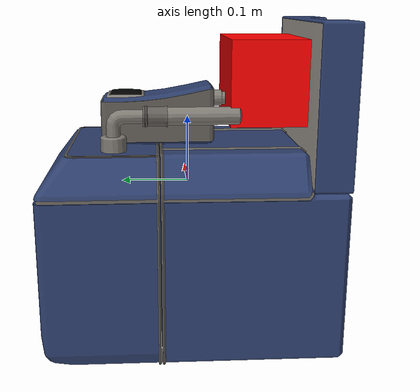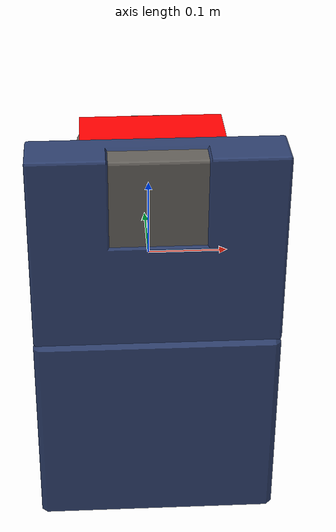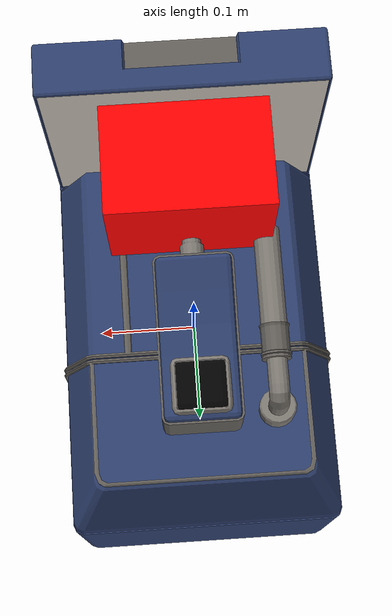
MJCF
<mujoco model="coffee_machine_1">
  <compiler autolimits="true" boundmass="0.01" angle="radian"/>
  <default>
    <default class="/">
      <default class="__VISUAL_MJT__">
        <geom contype="0" conaffinity="0" group="0"/>
      </default>
      <default class="__STRUCTURAL_MJT__">
        <geom contype="8" conaffinity="15" group="4" friction="0.90000000000000002 0.90000000000000002 0.001" solref="0.025000000000000001 1" solimp="0.998 0.998 0.001"/>
      </default>
      <default class="__DYNAMIC_MJT__">
        <geom contype="1" conaffinity="15" group="4" friction="0.90000000000000002 0.90000000000000002 0.001" solref="0.025000000000000001 1" solimp="0.998 0.998 0.001"/>
      </default>
    </default>
  </default>
  <asset>
    <material name="material_coffee_machine_backup_mat" class="/" specular="0.5" shininess="0.5" rgba="0.5 0.5 0.5 1"/>
    <material name="material_Coffee_Machine_Readout_Mat_Off" class="/" specular="0.5" shininess="0.5" rgba="0 0 0 1"/>
    <texture name="Coffee_Machine_Decal_Mat" type="2d" file="Coffee_Machine_Decal_AlbedoTransparency.png"/>
    <material name="material_Coffee_Machine_Decal_Mat" class="/" texture="Coffee_Machine_Decal_Mat" specular="0.5" shininess="0.5" rgba="1 1 1 1"/>
    <texture name="Coffee_Machine_Metal_Mat" type="2d" file="MetalBumpy_AlbedoTransparency.png"/>
    <material name="material_Coffee_Machine_Metal_Mat" class="/" texture="Coffee_Machine_Metal_Mat" specular="0.5" shininess="0.5" rgba="0.66176469999999998 0.66176469999999998 0.66176469999999998 1"/>
    <texture name="Coffee_Machine_Secondary1_Color_Mat" type="2d" file="BrushedIron_AlbedoTransparency.png"/>
    <material name="material_Coffee_Machine_Secondary1_Color_Mat" class="/" texture="Coffee_Machine_Secondary1_Color_Mat" specular="0.5" shininess="0.5" rgba="0.51470590000000005 0.51470590000000005 0.51470590000000005 1"/>
    <texture name="Coffee_Machine_Primary1_Color_Mat" type="2d" file="BumpyPlastic_Albedo.png"/>
    <material name="material_Coffee_Machine_Primary1_Color_Mat" class="/" texture="Coffee_Machine_Primary1_Color_Mat" specular="0.5" shininess="0.5" rgba="0.234375 0.34090910000000002 0.625 1"/>
    <mesh name="coffee_machine_1_coffee_machine_1_0" class="/" file="coffee_machine_1_coffee_machine_1/coffee_machine_1_coffee_machine_1_0.obj" scale="1 1 1"/>
    <mesh name="coffee_machine_1_coffee_machine_1_1" class="/" file="coffee_machine_1_coffee_machine_1/coffee_machine_1_coffee_machine_1_1.obj" scale="1 1 1"/>
    <mesh name="coffee_machine_1_coffee_machine_1_2" class="/" file="coffee_machine_1_coffee_machine_1/coffee_machine_1_coffee_machine_1_2.obj" scale="1 1 1"/>
    <mesh name="coffee_machine_1_coffee_machine_1_3" class="/" file="coffee_machine_1_coffee_machine_1/coffee_machine_1_coffee_machine_1_3.obj" scale="1 1 1"/>
    <mesh name="coffee_machine_1_coffee_machine_1_4" class="/" file="coffee_machine_1_coffee_machine_1/coffee_machine_1_coffee_machine_1_4.obj" scale="1 1 1"/>
    <mesh name="coffee_machine_1_coffee_machine_1_5" class="/" file="coffee_machine_1_coffee_machine_1/coffee_machine_1_coffee_machine_1_5.obj" scale="1 1 1"/>
  </asset>
  <worldbody>
    <body name="coffee_machine_1">
      <joint name="coffee_machine_1_free" class="/" type="free" pos="0 0 0" axis="0 0 1" stiffness="0" range="0 0" armature="0" damping="0.10000000000000001" frictionloss="0"/>
      <body name="coffee_machine_1_coffee_machine_1" pos="-0.0012999999999999999 -0.22112000000000001 -0.10508000000000001" quat="1 0 0 0">
        <geom name="coffee_machine_1_coffee_machine_1_0" class="__VISUAL_MJT__" type="mesh" material="material_coffee_machine_backup_mat" shellinertia="true" mesh="coffee_machine_1_coffee_machine_1_0"/>
        <geom name="coffee_machine_1_coffee_machine_1_1" class="__VISUAL_MJT__" type="mesh" material="material_Coffee_Machine_Readout_Mat_Off" shellinertia="false" mesh="coffee_machine_1_coffee_machine_1_1"/>
        <geom name="coffee_machine_1_coffee_machine_1_2" class="__VISUAL_MJT__" type="mesh" material="material_Coffee_Machine_Decal_Mat" shellinertia="false" mesh="coffee_machine_1_coffee_machine_1_2"/>
        <geom name="coffee_machine_1_coffee_machine_1_3" class="__VISUAL_MJT__" type="mesh" material="material_Coffee_Machine_Metal_Mat" shellinertia="false" mesh="coffee_machine_1_coffee_machine_1_3"/>
        <geom name="coffee_machine_1_coffee_machine_1_4" class="__VISUAL_MJT__" type="mesh" material="material_Coffee_Machine_Secondary1_Color_Mat" shellinertia="false" mesh="coffee_machine_1_coffee_machine_1_4"/>
        <geom name="coffee_machine_1_coffee_machine_1_5" class="__VISUAL_MJT__" type="mesh" material="material_Coffee_Machine_Primary1_Color_Mat" shellinertia="false" mesh="coffee_machine_1_coffee_machine_1_5"/>
        <site name="coffee_machine_1_Receptacle_0" class="/" type="box" rgba="1 0 0 1" size="0.081873238086700439 0.054735004901885986 0.060652691870927811" pos="-0 0.10973500460386276 0.26199999451637268" quat="1 0 0 0"/>
        <geom name="coffee_machine_1_PrimitiveCollider_0" class="__DYNAMIC_MJT__" type="box" size="0.14734183251857758 0.22112220525741577 0.15539097785949707" rgba="0 1 0 1" pos="-0.0012998580932617188 0.22112220525741577 0.014153838157653809" quat="1 0 0 0"/>
        <geom name="coffee_machine_1_PrimitiveCollider_1" class="__DYNAMIC_MJT__" type="box" size="0.070310875773429871 0.082799077033996582 0.044451594352722168" rgba="0 1 0 1" pos="-0.028478339314460754 0.2667618989944458 0.20935118198394775" quat="1 0 0 0"/>
        <geom name="coffee_machine_1_PrimitiveCollider_2" class="__DYNAMIC_MJT__" type="box" size="0.14002755284309387 0.027329444885253906 0.12135405838489532" rgba="0 1 0 1" pos="0.00051358342170715332 0.028031349182128906 0.23004738986492157" quat="1 0 0 0"/>
      </body>
    </body>
  </worldbody>
</mujoco>
